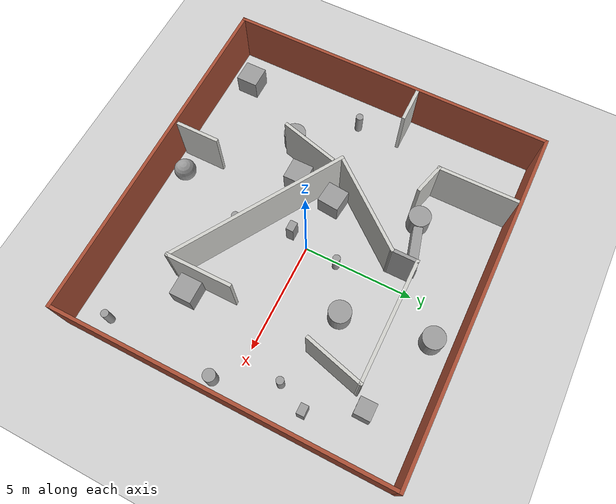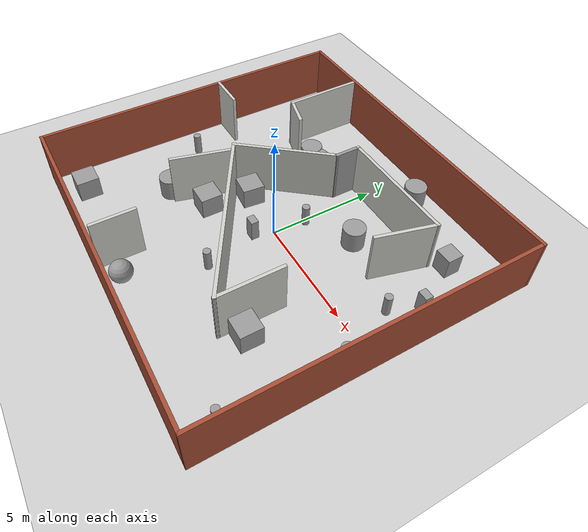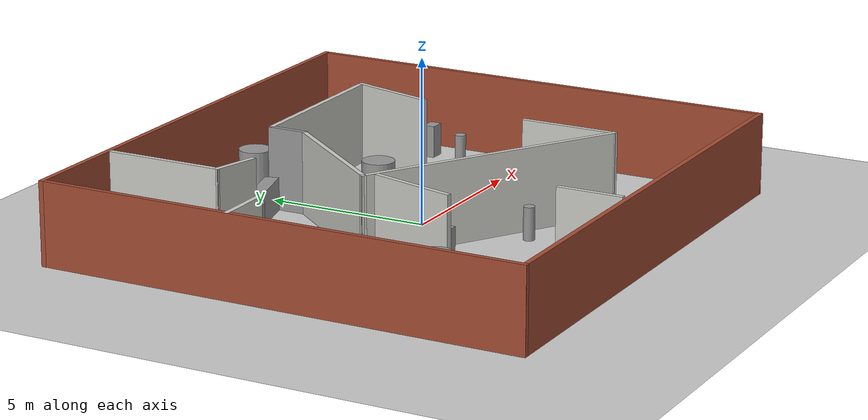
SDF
<sdf version="1.7">
 <world name="default">
  <light name="sun" type="directional">
   <pose>0 0 10 0 -0 0</pose>
   <diffuse>0.8 0.8 0.8 1</diffuse>
   <specular>0.2 0.2 0.2 1</specular>
   <attenuation>
    <range>1000</range>
    <constant>0.9</constant>
    <linear>0.01</linear>
    <quadratic>0.001</quadratic>
   </attenuation>
   <direction>-0.5 0.1 -0.9</direction>
   <spot><inner_angle>0</inner_angle><outer_angle>0</outer_angle><falloff>0</falloff></spot>
  </light>
  <model name="ground_plane">
   <static>1</static>
   <link name="link">
    <collision name="collision">
     <geometry><plane><normal>0 0 1</normal><size>100 100</size></plane></geometry>
     <surface>
      <contact><collide_bitmask>65535</collide_bitmask></contact>
      <friction><ode><mu>100</mu><mu2>50</mu2></ode></friction>
     </surface>
    </collision>
    <visual name="visual">
     <cast_shadows>0</cast_shadows>
     <geometry><plane><normal>0 0 1</normal><size>100 100</size></plane></geometry>
     <material>
      <script><uri>file://media/materials/scripts/gazebo.material</uri><name>Gazebo/Grey</name></script>
     </material>
    </visual>
   </link>
  </model>
  <gravity>0 0 -9.8</gravity>
  <magnetic_field>6e-06 2.3e-05 -4.2e-05</magnetic_field>
  <atmosphere type="adiabatic"/>
  <physics type="ode">
   <max_step_size>0.001</max_step_size>
   <real_time_factor>1</real_time_factor>
   <real_time_update_rate>1000</real_time_update_rate>
  </physics>
  <scene><ambient>0.4 0.4 0.4 1</ambient><background>0.7 0.7 0.7 1</background><shadows>1</shadows></scene>
  <spherical_coordinates>
   <surface_model>EARTH_WGS84</surface_model>
   <latitude_deg>0</latitude_deg>
   <longitude_deg>0</longitude_deg>
   <elevation>0</elevation>
   <heading_deg>0</heading_deg>
  </spherical_coordinates>
  <model name="newwalls">
   <pose>-0.401309 0.03661 0 0 -0 0</pose>
   <link name="Wall_10">
    <collision name="Wall_10_Collision">
     <geometry><box><size>15.75 0.15 2.5</size></box></geometry>
     <pose>0 0 1.25 0 -0 0</pose>
    </collision>
    <visual name="Wall_10_Visual">
     <pose>0 0 1.25 0 -0 0</pose>
     <geometry><box><size>15.75 0.15 2.5</size></box></geometry>
     <material>
      <script><uri>file://media/materials/scripts/gazebo.material</uri><name>Gazebo/Bricks</name></script>
      <ambient>1 1 1 1</ambient>
     </material>
     <meta><layer>0</layer></meta>
    </visual>
    <pose>-0 7.425 0 0 -0 3.14159</pose>
   </link>
   <link name="Wall_13">
    <collision name="Wall_13_Collision">
     <geometry><box><size>3.75 0.15 2.5</size></box></geometry>
     <pose>0 0 1.25 0 -0 0</pose>
    </collision>
    <visual name="Wall_13_Visual">
     <pose>0 0 1.25 0 -0 0</pose>
     <geometry><box><size>3.75 0.15 2.5</size></box></geometry>
     <material>
      <script><uri>file://media/materials/scripts/gazebo.material</uri><name>Gazebo/CeilingTiled</name></script>
      <ambient>1 1 1 1</ambient>
     </material>
     <meta><layer>0</layer></meta>
    </visual>
    <pose>-4.5564 5.58277 0 0 -0 -1.5708</pose>
   </link>
   <link name="Wall_15">
    <collision name="Wall_15_Collision">
     <geometry><box><size>1.5 0.15 2.5</size></box></geometry>
     <pose>0 0 1.25 0 -0 0</pose>
    </collision>
    <visual name="Wall_15_Visual">
     <pose>0 0 1.25 0 -0 0</pose>
     <geometry><box><size>1.5 0.15 2.5</size></box></geometry>
     <material>
      <script><uri>file://media/materials/scripts/gazebo.material</uri><name>Gazebo/CeilingTiled</name></script>
      <ambient>1 1 1 1</ambient>
     </material>
     <meta><layer>0</layer></meta>
    </visual>
    <pose>-3.9044 3.60807 0 0 -0 -0.261799</pose>
   </link>
   <link name="Wall_19">
    <collision name="Wall_19_Collision">
     <geometry><box><size>1.25 0.15 2.5</size></box></geometry>
     <pose>0 0 1.25 0 -0 0</pose>
    </collision>
    <visual name="Wall_19_Visual">
     <pose>0 0 1.25 0 -0 0</pose>
     <geometry><box><size>1.25 0.15 2.5</size></box></geometry>
     <material>
      <script><uri>file://media/materials/scripts/gazebo.material</uri><name>Gazebo/Grey</name></script>
      <ambient>1 1 1 1</ambient>
     </material>
     <meta><layer>0</layer></meta>
    </visual>
    <pose>-0.268113 4.04903 0 0 -0 1.5708</pose>
   </link>
   <link name="Wall_20">
    <collision name="Wall_20_Collision">
     <geometry><box><size>5.5 0.15 2.5</size></box></geometry>
     <pose>0 0 1.25 0 -0 0</pose>
    </collision>
    <visual name="Wall_20_Visual">
     <pose>0 0 1.25 0 -0 0</pose>
     <geometry><box><size>5.5 0.15 2.5</size></box></geometry>
     <material>
      <script><uri>file://media/materials/scripts/gazebo.material</uri><name>Gazebo/CeilingTiled</name></script>
      <ambient>1 1 1 1</ambient>
     </material>
     <meta><layer>0</layer></meta>
    </visual>
    <pose>2.40689 4.59903 0 0 -0 0</pose>
   </link>
   <link name="Wall_21">
    <collision name="Wall_21_Collision">
     <geometry><box><size>2.75 0.15 2.5</size></box></geometry>
     <pose>0 0 1.25 0 -0 0</pose>
    </collision>
    <visual name="Wall_21_Visual">
     <pose>0 0 1.25 0 -0 0</pose>
     <geometry><box><size>2.75 0.15 2.5</size></box></geometry>
     <material>
      <script><uri>file://media/materials/scripts/gazebo.material</uri><name>Gazebo/CeilingTiled</name></script>
      <ambient>1 1 1 1</ambient>
     </material>
     <meta><layer>0</layer></meta>
    </visual>
    <pose>4.74542 3.34333 0 0 -0 -1.8326</pose>
   </link>
   <link name="Wall_23">
    <collision name="Wall_23_Collision">
     <geometry><box><size>3 0.15 2.5</size></box></geometry>
     <pose>0 0 1.25 0 -0 0</pose>
    </collision>
    <visual name="Wall_23_Visual">
     <pose>0 0 1.25 0 -0 0</pose>
     <geometry><box><size>3 0.15 2.5</size></box></geometry>
     <material>
      <script><uri>file://media/materials/scripts/gazebo.material</uri><name>Gazebo/CeilingTiled</name></script>
      <ambient>1 1 1 1</ambient>
     </material>
     <meta><layer>0</layer></meta>
    </visual>
    <pose>3.93927 -3.02337 0 0 -0 -1.5708</pose>
   </link>
   <link name="Wall_26">
    <collision name="Wall_26_Collision">
     <geometry><box><size>4.76612 0.15 2.5</size></box></geometry>
     <pose>0 0 1.25 0 -0 0</pose>
    </collision>
    <visual name="Wall_26_Visual">
     <pose>0 0 1.25 0 -0 0</pose>
     <geometry><box><size>4.76612 0.15 2.5</size></box></geometry>
     <material>
      <script><uri>file://media/materials/scripts/gazebo.material</uri><name>Gazebo/CeilingTiled</name></script>
      <ambient>1 1 1 1</ambient>
     </material>
     <meta><layer>0</layer></meta>
    </visual>
    <pose>-1.71442 1.70033 0 0 -0 0.893569</pose>
   </link>
   <link name="Wall_28">
    <collision name="Wall_28_Collision">
     <geometry><box><size>8.47661 0.15 2.5</size></box></geometry>
     <pose>0 0 1.25 0 -0 0</pose>
    </collision>
    <visual name="Wall_28_Visual">
     <pose>0 0 1.25 0 -0 0</pose>
     <geometry><box><size>8.47661 0.15 2.5</size></box></geometry>
     <material>
      <script><uri>file://media/materials/scripts/gazebo.material</uri><name>Gazebo/CeilingTiled</name></script>
      <ambient>1 1 1 1</ambient>
     </material>
     <meta><layer>0</layer></meta>
    </visual>
    <pose>0.389267 -2.27337 0 0 -0 -0.549688</pose>
   </link>
   <link name="Wall_32">
    <collision name="Wall_32_Collision">
     <geometry><box><size>2 0.15 2.5</size></box></geometry>
     <pose>0 0 1.25 0 -0 0</pose>
    </collision>
    <visual name="Wall_32_Visual">
     <pose>0 0 1.25 0 -0 0</pose>
     <geometry><box><size>2 0.15 2.5</size></box></geometry>
     <material>
      <script><uri>file://media/materials/scripts/gazebo.material</uri><name>Gazebo/CeilingTiled</name></script>
      <ambient>1 1 1 1</ambient>
     </material>
     <meta><layer>0</layer></meta>
    </visual>
    <pose>-1.49879 -6.26553 0 0 -0 -1.5708</pose>
   </link>
   <link name="Wall_34">
    <collision name="Wall_34_Collision">
     <geometry><box><size>2.75 0.15 2.5</size></box></geometry>
     <pose>0 0 1.25 0 -0 0</pose>
    </collision>
    <visual name="Wall_34_Visual">
     <pose>0 0 1.25 0 -0 0</pose>
     <geometry><box><size>2.75 0.15 2.5</size></box></geometry>
     <material>
      <script><uri>file://media/materials/scripts/gazebo.material</uri><name>Gazebo/CeilingTiled</name></script>
      <ambient>1 1 1 1</ambient>
     </material>
     <meta><layer>0</layer></meta>
    </visual>
    <pose>-3.23446 -1.69902 0 0 -0 -1.8326</pose>
   </link>
   <link name="Wall_36">
    <collision name="Wall_36_Collision">
     <geometry><box><size>1.75 0.15 2.5</size></box></geometry>
     <pose>0 0 1.25 0 -0 0</pose>
    </collision>
    <visual name="Wall_36_Visual">
     <pose>0 0 1.25 0 -0 0</pose>
     <geometry><box><size>1.75 0.15 2.5</size></box></geometry>
     <material>
      <script><uri>file://media/materials/scripts/gazebo.material</uri><name>Gazebo/CeilingTiled</name></script>
      <ambient>1 1 1 1</ambient>
     </material>
     <meta><layer>0</layer></meta>
    </visual>
    <pose>-6.99521 1.44561 0 0 -0 0</pose>
   </link>
   <link name="Wall_5">
    <collision name="Wall_5_Collision">
     <geometry><box><size>15 0.15 2.5</size></box></geometry>
     <pose>0 0 1.25 0 -0 0</pose>
    </collision>
    <visual name="Wall_5_Visual">
     <pose>0 0 1.25 0 -0 0</pose>
     <geometry><box><size>15 0.15 2.5</size></box></geometry>
     <material>
      <script><uri>file://media/materials/scripts/gazebo.material</uri><name>Gazebo/Bricks</name></script>
      <ambient>1 1 1 1</ambient>
     </material>
     <meta><layer>0</layer></meta>
    </visual>
    <pose>-7.8 0 0 0 -0 -1.5708</pose>
   </link>
   <link name="Wall_6">
    <collision name="Wall_6_Collision">
     <geometry><box><size>15.75 0.15 2.5</size></box></geometry>
     <pose>0 0 1.25 0 -0 0</pose>
    </collision>
    <visual name="Wall_6_Visual">
     <pose>0 0 1.25 0 -0 0</pose>
     <geometry><box><size>15.75 0.15 2.5</size></box></geometry>
     <material>
      <script><uri>file://media/materials/scripts/gazebo.material</uri><name>Gazebo/Bricks</name></script>
      <ambient>1 1 1 1</ambient>
     </material>
     <meta><layer>0</layer></meta>
    </visual>
    <pose>-0 -7.425 0 0 -0 0</pose>
   </link>
   <link name="Wall_9">
    <collision name="Wall_9_Collision">
     <geometry><box><size>15 0.15 2.5</size></box></geometry>
     <pose>0 0 1.25 0 -0 0</pose>
    </collision>
    <visual name="Wall_9_Visual">
     <pose>0 0 1.25 0 -0 0</pose>
     <geometry><box><size>15 0.15 2.5</size></box></geometry>
     <material>
      <script><uri>file://media/materials/scripts/gazebo.material</uri><name>Gazebo/Bricks</name></script>
      <ambient>1 1 1 1</ambient>
     </material>
     <meta><layer>0</layer></meta>
    </visual>
    <pose>7.8 0 0 0 -0 1.5708</pose>
   </link>
   <static>1</static>
  </model>
  <model name="unit_cylinder">
   <pose>-3.25174 3.91545 0.499997 3e-06 2e-06 -0.119851</pose>
   <link name="link">
    <inertial>
     <mass>1</mass>
     <inertia><ixx>0.145833</ixx><ixy>0</ixy><ixz>0</ixz><iyy>0.145833</iyy><iyz>0</iyz><izz>0.125</izz></inertia>
    </inertial>
    <collision name="collision">
     <geometry><cylinder><radius>0.5</radius><length>1</length></cylinder></geometry>
    </collision>
    <visual name="visual">
     <geometry><cylinder><radius>0.5</radius><length>1</length></cylinder></geometry>
     <material>
      <script><name>Gazebo/Grey</name><uri>file://media/materials/scripts/gazebo.material</uri></script>
     </material>
    </visual>
   </link>
  </model>
  <model name="unit_box">
   <pose>-1.78228 4.30018 0.499986 0 -1.4e-05 0.258371</pose>
   <link name="link">
    <inertial>
     <mass>1</mass>
     <inertia>
      <ixx>0.166667</ixx>
      <ixy>0</ixy>
      <ixz>0</ixz>
      <iyy>0.166667</iyy>
      <iyz>0</iyz>
      <izz>0.166667</izz>
     </inertia>
    </inertial>
    <collision name="collision"><geometry><box><size>2.01332 0.415809 1</size></box></geometry></collision>
    <visual name="visual">
     <geometry><box><size>2.01332 0.415809 1</size></box></geometry>
     <material>
      <script><name>Gazebo/Grey</name><uri>file://media/materials/scripts/gazebo.material</uri></script>
     </material>
    </visual>
   </link>
  </model>
  <model name="unit_box_0">
   <pose>-2.42811 0.119268 0.5 -0 -0 -0.097752</pose>
   <link name="link">
    <inertial>
     <mass>1</mass>
     <inertia>
      <ixx>0.166667</ixx>
      <ixy>0</ixy>
      <ixz>0</ixz>
      <iyy>0.166667</iyy>
      <iyz>0</iyz>
      <izz>0.166667</izz>
     </inertia>
    </inertial>
    <collision name="collision"><geometry><box><size>1 1 1</size></box></geometry></collision>
    <visual name="visual">
     <geometry><box><size>1 1 1</size></box></geometry>
     <material>
      <script><name>Gazebo/Grey</name><uri>file://media/materials/scripts/gazebo.material</uri></script>
     </material>
    </visual>
   </link>
  </model>
  <model name="unit_box_1">
   <pose>-0.338974 -0.862478 0.500001 2e-06 -1e-06 0.000102</pose>
   <link name="link">
    <inertial>
     <mass>1</mass>
     <inertia>
      <ixx>0.166667</ixx>
      <ixy>0</ixy>
      <ixz>0</ixz>
      <iyy>0.166667</iyy>
      <iyz>0</iyz>
      <izz>0.166667</izz>
     </inertia>
    </inertial>
    <collision name="collision"><geometry><box><size>0.461555 0.346231 1</size></box></geometry></collision>
    <visual name="visual">
     <geometry><box><size>0.461555 0.346231 1</size></box></geometry>
     <material>
      <script><name>Gazebo/Grey</name><uri>file://media/materials/scripts/gazebo.material</uri></script>
     </material>
    </visual>
   </link>
  </model>
  <model name="unit_cylinder_0_clone">
   <pose>0.135071 1.51768 0.499998 0 -0 1.9e-05</pose>
   <link name="link">
    <inertial>
     <mass>1</mass>
     <inertia><ixx>0.145833</ixx><ixy>0</ixy><ixz>0</ixz><iyy>0.145833</iyy><iyz>0</iyz><izz>0.125</izz></inertia>
    </inertial>
    <collision name="collision">
     <geometry><cylinder><radius>0.16947</radius><length>1</length></cylinder></geometry>
    </collision>
    <visual name="visual">
     <geometry><cylinder><radius>0.16947</radius><length>1</length></cylinder></geometry>
     <material>
      <script><name>Gazebo/Grey</name><uri>file://media/materials/scripts/gazebo.material</uri></script>
     </material>
    </visual>
   </link>
  </model>
  <model name="unit_cylinder_1">
   <pose>2.16097 2.64879 0.499994 4e-06 -3e-06 0</pose>
   <link name="link">
    <inertial>
     <mass>1</mass>
     <inertia><ixx>0.145833</ixx><ixy>0</ixy><ixz>0</ixz><iyy>0.145833</iyy><iyz>0</iyz><izz>0.125</izz></inertia>
    </inertial>
    <collision name="collision">
     <geometry><cylinder><radius>0.5</radius><length>1</length></cylinder></geometry>
    </collision>
    <visual name="visual">
     <geometry><cylinder><radius>0.5</radius><length>1</length></cylinder></geometry>
     <material>
      <script><name>Gazebo/Grey</name><uri>file://media/materials/scripts/gazebo.material</uri></script>
     </material>
    </visual>
   </link>
  </model>
  <model name="unit_cylinder_2">
   <pose>6.7879 -0.843452 0.499991 0 -0 0</pose>
   <link name="link">
    <inertial>
     <mass>1</mass>
     <inertia><ixx>0.145833</ixx><ixy>0</ixy><ixz>0</ixz><iyy>0.145833</iyy><iyz>0</iyz><izz>0.125</izz></inertia>
    </inertial>
    <collision name="collision">
     <geometry><cylinder><radius>0.276122</radius><length>1</length></cylinder></geometry>
    </collision>
    <visual name="visual">
     <geometry><cylinder><radius>0.276122</radius><length>1</length></cylinder></geometry>
     <material>
      <script><name>Gazebo/Grey</name><uri>file://media/materials/scripts/gazebo.material</uri></script>
     </material>
    </visual>
   </link>
  </model>
  <model name="unit_box_2">
   <pose>4.11826 -3.5113 0.499995 0 1e-05 -5e-06</pose>
   <link name="link">
    <inertial>
     <mass>1</mass>
     <inertia>
      <ixx>0.166667</ixx>
      <ixy>0</ixy>
      <ixz>0</ixz>
      <iyy>0.166667</iyy>
      <iyz>0</iyz>
      <izz>0.166667</izz>
     </inertia>
    </inertial>
    <collision name="collision"><geometry><box><size>1 1 1</size></box></geometry></collision>
    <visual name="visual">
     <geometry><box><size>1 1 1</size></box></geometry>
     <material>
      <script><name>Gazebo/Grey</name><uri>file://media/materials/scripts/gazebo.material</uri></script>
     </material>
    </visual>
   </link>
  </model>
  <model name="unit_cylinder_0_clone_0">
   <pose>6.53898 -5.90686 0.499999 0 -0 1.9e-05</pose>
   <link name="link">
    <inertial>
     <mass>1</mass>
     <inertia><ixx>0.145833</ixx><ixy>0</ixy><ixz>0</ixz><iyy>0.145833</iyy><iyz>0</iyz><izz>0.125</izz></inertia>
    </inertial>
    <collision name="collision">
     <geometry><cylinder><radius>0.16947</radius><length>1</length></cylinder></geometry>
    </collision>
    <visual name="visual">
     <geometry><cylinder><radius>0.16947</radius><length>1</length></cylinder></geometry>
     <material>
      <script><name>Gazebo/Grey</name><uri>file://media/materials/scripts/gazebo.material</uri></script>
     </material>
    </visual>
   </link>
  </model>
  <model name="unit_sphere">
   <pose>-0.830593 -6.60592 0.5 0 -0 0</pose>
   <link name="link">
    <inertial>
     <mass>1</mass>
     <inertia><ixx>0.1</ixx><ixy>0</ixy><ixz>0</ixz><iyy>0.1</iyy><iyz>0</iyz><izz>0.1</izz></inertia>
    </inertial>
    <collision name="collision"><geometry><sphere><radius>0.5</radius></sphere></geometry></collision>
    <visual name="visual">
     <geometry><sphere><radius>0.5</radius></sphere></geometry>
     <material>
      <script><name>Gazebo/Grey</name><uri>file://media/materials/scripts/gazebo.material</uri></script>
     </material>
    </visual>
   </link>
  </model>
  <model name="unit_cylinder_3">
   <pose>1.43295 6.50623 0.499998 3e-06 -2e-06 0</pose>
   <link name="link">
    <inertial>
     <mass>1</mass>
     <inertia><ixx>0.145833</ixx><ixy>0</ixy><ixz>0</ixz><iyy>0.145833</iyy><iyz>0</iyz><izz>0.125</izz></inertia>
    </inertial>
    <collision name="collision">
     <geometry><cylinder><radius>0.5</radius><length>1</length></cylinder></geometry>
    </collision>
    <visual name="visual">
     <geometry><cylinder><radius>0.5</radius><length>1</length></cylinder></geometry>
     <material>
      <script><name>Gazebo/Grey</name><uri>file://media/materials/scripts/gazebo.material</uri></script>
     </material>
    </visual>
   </link>
  </model>
  <model name="unit_box_3">
   <pose>5.18766 5.19789 0.499996 0 1e-05 -1e-05</pose>
   <link name="link">
    <inertial>
     <mass>1</mass>
     <inertia>
      <ixx>0.166667</ixx>
      <ixy>0</ixy>
      <ixz>0</ixz>
      <iyy>0.166667</iyy>
      <iyz>0</iyz>
      <izz>0.166667</izz>
     </inertia>
    </inertial>
    <collision name="collision"><geometry><box><size>0.745518 0.738188 1</size></box></geometry></collision>
    <visual name="visual">
     <geometry><box><size>0.745518 0.738188 1</size></box></geometry>
     <material>
      <script><name>Gazebo/Grey</name><uri>file://media/materials/scripts/gazebo.material</uri></script>
     </material>
    </visual>
   </link>
  </model>
  <model name="unit_box_1_clone">
   <pose>6.30839 3.03945 0.500001 2e-06 -2e-06 0.000397</pose>
   <link name="link">
    <inertial>
     <mass>1</mass>
     <inertia>
      <ixx>0.166667</ixx>
      <ixy>0</ixy>
      <ixz>0</ixz>
      <iyy>0.166667</iyy>
      <iyz>0</iyz>
      <izz>0.166667</izz>
     </inertia>
    </inertial>
    <collision name="collision"><geometry><box><size>0.461555 0.346231 1</size></box></geometry></collision>
    <visual name="visual">
     <geometry><box><size>0.461555 0.346231 1</size></box></geometry>
     <material>
      <script><name>Gazebo/Grey</name><uri>file://media/materials/scripts/gazebo.material</uri></script>
     </material>
    </visual>
   </link>
  </model>
  <model name="unit_cylinder_0_clone_clone">
   <pose>5.71889 1.74836 0.499991 0 -0 1.8e-05</pose>
   <link name="link">
    <inertial>
     <mass>1</mass>
     <inertia><ixx>0.145833</ixx><ixy>0</ixy><ixz>0</ixz><iyy>0.145833</iyy><iyz>0</iyz><izz>0.125</izz></inertia>
    </inertial>
    <collision name="collision">
     <geometry><cylinder><radius>0.16947</radius><length>1</length></cylinder></geometry>
    </collision>
    <visual name="visual">
     <geometry><cylinder><radius>0.16947</radius><length>1</length></cylinder></geometry>
     <material>
      <script><name>Gazebo/Grey</name><uri>file://media/materials/scripts/gazebo.material</uri></script>
     </material>
    </visual>
   </link>
  </model>
  <model name="unit_box_4">
   <pose>-2.82224 -1.80899 0.499995 0 1e-05 -5e-06</pose>
   <link name="link">
    <inertial>
     <mass>1</mass>
     <inertia>
      <ixx>0.166667</ixx>
      <ixy>0</ixy>
      <ixz>0</ixz>
      <iyy>0.166667</iyy>
      <iyz>0</iyz>
      <izz>0.166667</izz>
     </inertia>
    </inertial>
    <collision name="collision"><geometry><box><size>1 1 1</size></box></geometry></collision>
    <visual name="visual">
     <geometry><box><size>1 1 1</size></box></geometry>
     <material>
      <script><name>Gazebo/Grey</name><uri>file://media/materials/scripts/gazebo.material</uri></script>
     </material>
    </visual>
   </link>
  </model>
  <model name="unit_cylinder_0_clone_1">
   <pose>0.306444 -3.30091 0.499999 0 -0 1.9e-05</pose>
   <link name="link">
    <inertial>
     <mass>1</mass>
     <inertia><ixx>0.145833</ixx><ixy>0</ixy><ixz>0</ixz><iyy>0.145833</iyy><iyz>0</iyz><izz>0.125</izz></inertia>
    </inertial>
    <collision name="collision">
     <geometry><cylinder><radius>0.16947</radius><length>1</length></cylinder></geometry>
    </collision>
    <visual name="visual">
     <geometry><cylinder><radius>0.16947</radius><length>1</length></cylinder></geometry>
     <material>
      <script><name>Gazebo/Grey</name><uri>file://media/materials/scripts/gazebo.material</uri></script>
     </material>
    </visual>
   </link>
  </model>
  <model name="unit_cylinder_4">
   <pose>-4.55443 -2.87324 0.499998 3e-06 -2e-06 -0.000693</pose>
   <link name="link">
    <inertial>
     <mass>1</mass>
     <inertia><ixx>0.145833</ixx><ixy>0</ixy><ixz>0</ixz><iyy>0.145833</iyy><iyz>0</iyz><izz>0.125</izz></inertia>
    </inertial>
    <collision name="collision">
     <geometry><cylinder><radius>0.5</radius><length>1</length></cylinder></geometry>
    </collision>
    <visual name="visual">
     <geometry><cylinder><radius>0.5</radius><length>1</length></cylinder></geometry>
     <material>
      <script><name>Gazebo/Grey</name><uri>file://media/materials/scripts/gazebo.material</uri></script>
     </material>
    </visual>
   </link>
  </model>
  <model name="unit_cylinder_0_clone_2">
   <pose>-6.66213 -0.567499 0.499999 0 -0 1.9e-05</pose>
   <link name="link">
    <inertial>
     <mass>1</mass>
     <inertia><ixx>0.145833</ixx><ixy>0</ixy><ixz>0</ixz><iyy>0.145833</iyy><iyz>0</iyz><izz>0.125</izz></inertia>
    </inertial>
    <collision name="collision">
     <geometry><cylinder><radius>0.16947</radius><length>1</length></cylinder></geometry>
    </collision>
    <visual name="visual">
     <geometry><cylinder><radius>0.16947</radius><length>1</length></cylinder></geometry>
     <material>
      <script><name>Gazebo/Grey</name><uri>file://media/materials/scripts/gazebo.material</uri></script>
     </material>
    </visual>
   </link>
  </model>
  <model name="unit_box_5">
   <pose>-6.5278 -6.23938 0.499995 0 1e-05 0</pose>
   <link name="link">
    <inertial>
     <mass>1</mass>
     <inertia>
      <ixx>0.166667</ixx>
      <ixy>0</ixy>
      <ixz>0</ixz>
      <iyy>0.166667</iyy>
      <iyz>0</iyz>
      <izz>0.166667</izz>
     </inertia>
    </inertial>
    <collision name="collision"><geometry><box><size>1 1 1</size></box></geometry></collision>
    <visual name="visual">
     <geometry><box><size>1 1 1</size></box></geometry>
     <material>
      <script><name>Gazebo/Grey</name><uri>file://media/materials/scripts/gazebo.material</uri></script>
     </material>
    </visual>
   </link>
  </model>
 </world>
</sdf>
